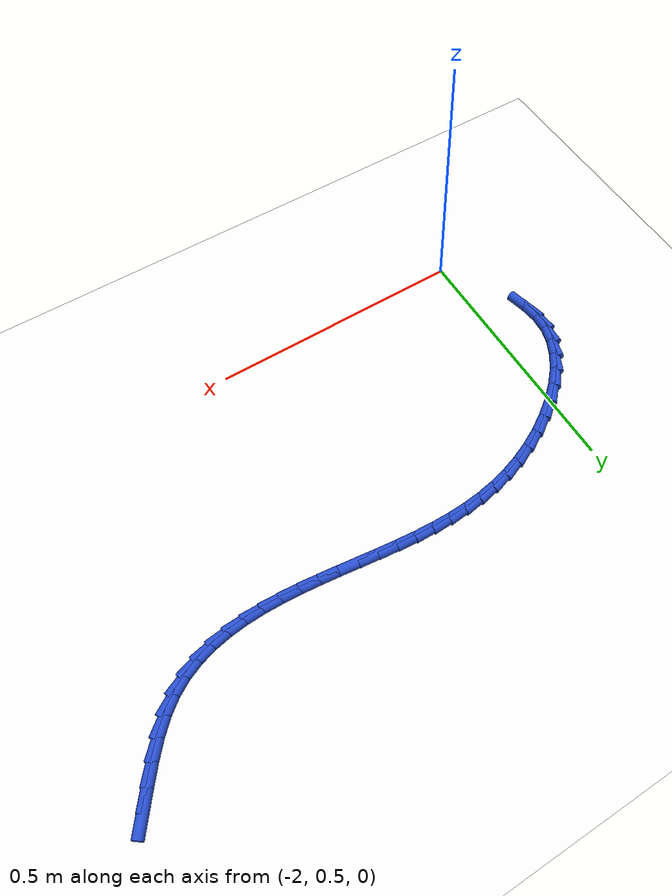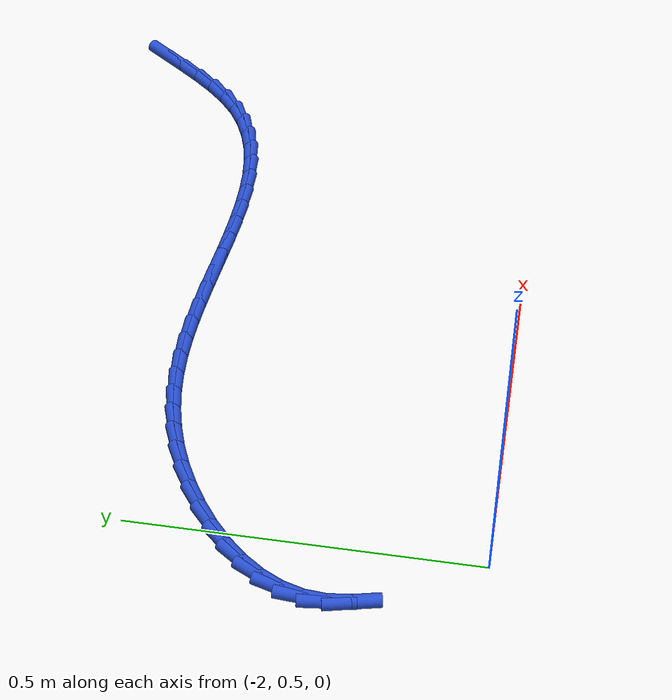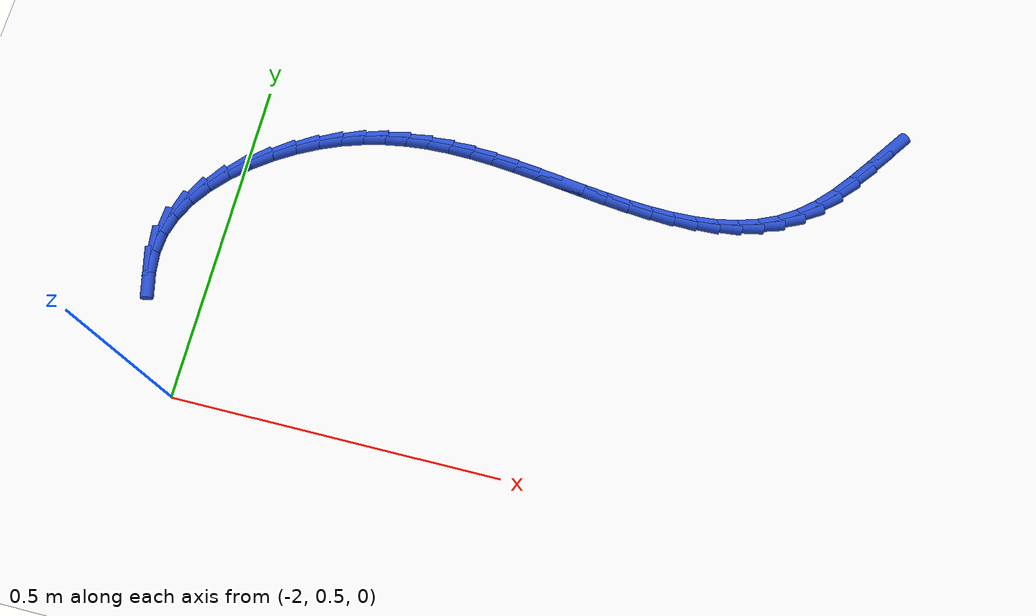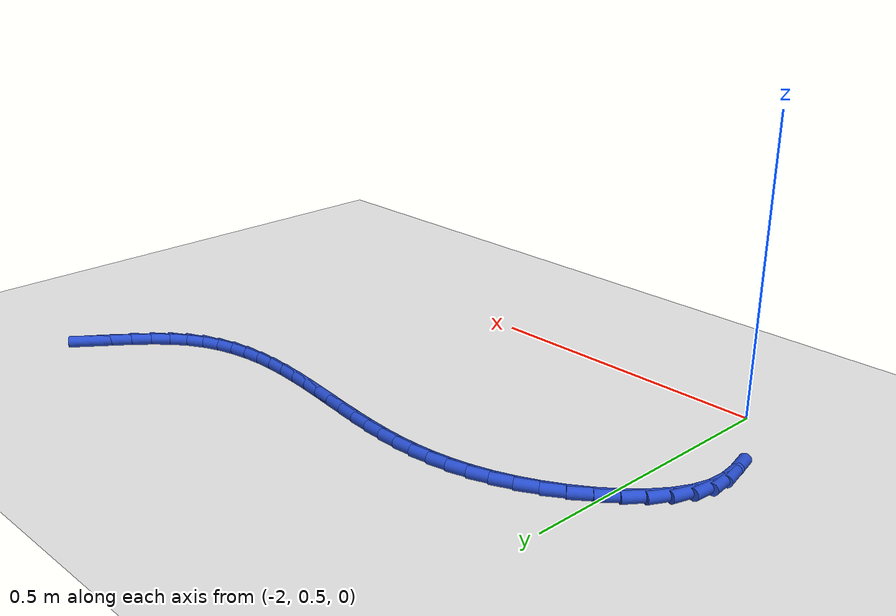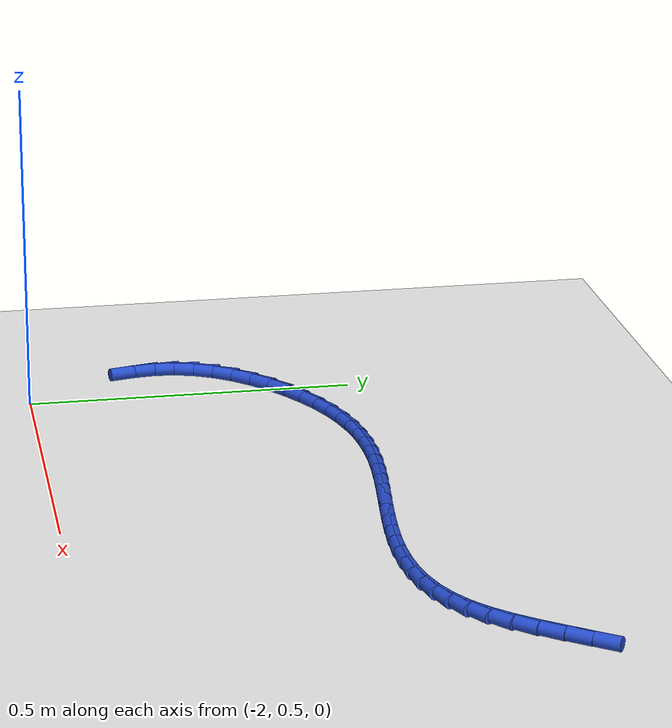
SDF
<sdf version="1.6">
 <world name="default">
  <model name="ground_plane">
   <static>1</static>
   <link name="link">
    <collision name="collision">
     <geometry><plane><normal>0 0 1</normal><size>100 100</size></plane></geometry>
     <surface><friction><ode><mu>100</mu><mu2>50</mu2></ode></friction></surface>
    </collision>
    <visual name="visual">
     <cast_shadows>0</cast_shadows>
     <geometry><plane><normal>0 0 1</normal><size>100 100</size></plane></geometry>
     <material>
      <script><uri>file://media/materials/scripts/gazebo.material</uri><name>Gazebo/WhiteGlow</name></script>
     </material>
    </visual>
   </link>
  </model>
  <model name="line">
   <link name="link_54">
    <pose>-1.0417423311238279 1.1291191869624517 0.01 0 1.57 0.9470828733167915</pose>
    <collision name="collision">
     <geometry><cylinder><radius>0.01</radius><length>0.08</length></cylinder></geometry>
    </collision>
    <visual name="visual">
     <material>
      <script><name>Gazebo/Blue</name><uri>file://media/materials/scripts/gazebo.material</uri></script>
     </material>
     <geometry><cylinder><radius>0.01</radius><length>0.08</length></cylinder></geometry>
    </visual>
   </link>
   <link name="link_55">
    <pose>-1.0631627246353132 1.0993492076046145 0.01 0 1.57 0.9313293873262152</pose>
    <collision name="collision">
     <geometry><cylinder><radius>0.01</radius><length>0.08</length></cylinder></geometry>
    </collision>
    <visual name="visual">
     <material>
      <script><name>Gazebo/Blue</name><uri>file://media/materials/scripts/gazebo.material</uri></script>
     </material>
     <geometry><cylinder><radius>0.01</radius><length>0.08</length></cylinder></geometry>
    </visual>
   </link>
   <link name="link_56">
    <pose>-1.0849441892836496 1.0700618497447834 0.01 0 1.57 0.8869006219384965</pose>
    <collision name="collision">
     <geometry><cylinder><radius>0.01</radius><length>0.08</length></cylinder></geometry>
    </collision>
    <visual name="visual">
     <material>
      <script><name>Gazebo/Blue</name><uri>file://media/materials/scripts/gazebo.material</uri></script>
     </material>
     <geometry><cylinder><radius>0.01</radius><length>0.08</length></cylinder></geometry>
    </visual>
   </link>
   <link name="link_57">
    <pose>-1.1075238045878433 1.0423610490824702 0.01 0 1.57 0.809877830168493</pose>
    <collision name="collision">
     <geometry><cylinder><radius>0.01</radius><length>0.08</length></cylinder></geometry>
    </collision>
    <visual name="visual">
     <material>
      <script><name>Gazebo/Blue</name><uri>file://media/materials/scripts/gazebo.material</uri></script>
     </material>
     <geometry><cylinder><radius>0.01</radius><length>0.08</length></cylinder></geometry>
    </visual>
   </link>
   <link name="link_58">
    <pose>-1.1313386500668998 1.017350741317187 0.01 0 1.57 0.6945707113592207</pose>
    <collision name="collision">
     <geometry><cylinder><radius>0.01</radius><length>0.08</length></cylinder></geometry>
    </collision>
    <visual name="visual">
     <material>
      <script><name>Gazebo/Blue</name><uri>file://media/materials/scripts/gazebo.material</uri></script>
     </material>
     <geometry><cylinder><radius>0.01</radius><length>0.08</length></cylinder></geometry>
    </visual>
   </link>
   <link name="link_59">
    <pose>-1.1568208809657459 0.9961227830435774 0.01 0 1.57 0.5546889701685163</pose>
    <collision name="collision">
     <geometry><cylinder><radius>0.01</radius><length>0.08</length></cylinder></geometry>
    </collision>
    <visual name="visual">
     <material>
      <script><name>Gazebo/Blue</name><uri>file://media/materials/scripts/gazebo.material</uri></script>
     </material>
     <geometry><cylinder><radius>0.01</radius><length>0.08</length></cylinder></geometry>
    </visual>
   </link>
   <link name="link_60">
    <pose>-1.1841633607919964 0.9791820550010722 0.01 0 1.57 0.4203542126535305</pose>
    <collision name="collision">
     <geometry><cylinder><radius>0.01</radius><length>0.08</length></cylinder></geometry>
    </collision>
    <visual name="visual">
     <material>
      <script><name>Gazebo/Blue</name><uri>file://media/materials/scripts/gazebo.material</uri></script>
     </material>
     <geometry><cylinder><radius>0.01</radius><length>0.08</length></cylinder></geometry>
    </visual>
   </link>
   <link name="link_61">
    <pose>-1.2132171776333305 0.9661950725026004 0.01 0 1.57 0.29905972575282286</pose>
    <collision name="collision">
     <geometry><cylinder><radius>0.01</radius><length>0.08</length></cylinder></geometry>
    </collision>
    <visual name="visual">
     <material>
      <script><name>Gazebo/Blue</name><uri>file://media/materials/scripts/gazebo.material</uri></script>
     </material>
     <geometry><cylinder><radius>0.01</radius><length>0.08</length></cylinder></geometry>
    </visual>
   </link>
   <link name="link_62">
    <pose>-1.2438071785914095 0.9567639824655036 0.01 0 1.57 0.1938673856405325</pose>
    <collision name="collision">
     <geometry><cylinder><radius>0.01</radius><length>0.08</length></cylinder></geometry>
    </collision>
    <visual name="visual">
     <material>
      <script><name>Gazebo/Blue</name><uri>file://media/materials/scripts/gazebo.material</uri></script>
     </material>
     <geometry><cylinder><radius>0.01</radius><length>0.08</length></cylinder></geometry>
    </visual>
   </link>
   <link name="link_63">
    <pose>-1.2757582107678975 0.9504909318071219 0.01 0 1.57 0.1056161498923905</pose>
    <collision name="collision">
     <geometry><cylinder><radius>0.01</radius><length>0.08</length></cylinder></geometry>
    </collision>
    <visual name="visual">
     <material>
      <script><name>Gazebo/Blue</name><uri>file://media/materials/scripts/gazebo.material</uri></script>
     </material>
     <geometry><cylinder><radius>0.01</radius><length>0.08</length></cylinder></geometry>
    </visual>
   </link>
   <link name="link_64">
    <pose>-1.3088951212644555 0.9469780674447966 0.01 0 1.57 0.03368010845284562</pose>
    <collision name="collision">
     <geometry><cylinder><radius>0.01</radius><length>0.08</length></cylinder></geometry>
    </collision>
    <visual name="visual">
     <material>
      <script><name>Gazebo/Blue</name><uri>file://media/materials/scripts/gazebo.material</uri></script>
     </material>
     <geometry><cylinder><radius>0.01</radius><length>0.08</length></cylinder></geometry>
    </visual>
   </link>
   <link name="link_65">
    <pose>-1.3430427571827463 0.945827536295868 0.01 0 1.57 -0.02326265055965935</pose>
    <collision name="collision">
     <geometry><cylinder><radius>0.01</radius><length>0.08</length></cylinder></geometry>
    </collision>
    <visual name="visual">
     <material>
      <script><name>Gazebo/Blue</name><uri>file://media/materials/scripts/gazebo.material</uri></script>
     </material>
     <geometry><cylinder><radius>0.01</radius><length>0.08</length></cylinder></geometry>
    </visual>
   </link>
   <link name="link_66">
    <pose>-1.3780259656244327 0.9466414852776776 0.01 0 1.57 -0.06668922177319665</pose>
    <collision name="collision">
     <geometry><cylinder><radius>0.01</radius><length>0.08</length></cylinder></geometry>
    </collision>
    <visual name="visual">
     <material>
      <script><name>Gazebo/Blue</name><uri>file://media/materials/scripts/gazebo.material</uri></script>
     </material>
     <geometry><cylinder><radius>0.01</radius><length>0.08</length></cylinder></geometry>
    </visual>
   </link>
   <link name="link_67">
    <pose>-1.4136695936911763 0.9490220613075656 0.01 0 1.57 -0.0979270749166852</pose>
    <collision name="collision">
     <geometry><cylinder><radius>0.01</radius><length>0.08</length></cylinder></geometry>
    </collision>
    <visual name="visual">
     <material>
      <script><name>Gazebo/Blue</name><uri>file://media/materials/scripts/gazebo.material</uri></script>
     </material>
     <geometry><cylinder><radius>0.01</radius><length>0.08</length></cylinder></geometry>
    </visual>
   </link>
   <link name="link_68">
    <pose>-1.4497984884846407 0.9525714113028732 0.01 0 1.57 -0.1180108050710672</pose>
    <collision name="collision">
     <geometry><cylinder><radius>0.01</radius><length>0.08</length></cylinder></geometry>
    </collision>
    <visual name="visual">
     <material>
      <script><name>Gazebo/Blue</name><uri>file://media/materials/scripts/gazebo.material</uri></script>
     </material>
     <geometry><cylinder><radius>0.01</radius><length>0.08</length></cylinder></geometry>
    </visual>
   </link>
   <link name="link_69">
    <pose>-1.4862374971064871 0.9568916821809412 0.01 0 1.57 -0.1276270603784995</pose>
    <collision name="collision">
     <geometry><cylinder><radius>0.01</radius><length>0.08</length></cylinder></geometry>
    </collision>
    <visual name="visual">
     <material>
      <script><name>Gazebo/Blue</name><uri>file://media/materials/scripts/gazebo.material</uri></script>
     </material>
     <geometry><cylinder><radius>0.01</radius><length>0.08</length></cylinder></geometry>
    </visual>
   </link>
   <link name="link_70">
    <pose>-1.522811466658379 0.9615850208591104 0.01 0 1.57 -0.12709848111222424</pose>
    <collision name="collision">
     <geometry><cylinder><radius>0.01</radius><length>0.08</length></cylinder></geometry>
    </collision>
    <visual name="visual">
     <material>
      <script><name>Gazebo/Blue</name><uri>file://media/materials/scripts/gazebo.material</uri></script>
     </material>
     <geometry><cylinder><radius>0.01</radius><length>0.08</length></cylinder></geometry>
    </visual>
   </link>
   <link name="link_71">
    <pose>-1.5593452442419777 0.9662535742547216 0.01 0 1.57 -0.1163797046956164</pose>
    <collision name="collision">
     <geometry><cylinder><radius>0.01</radius><length>0.08</length></cylinder></geometry>
    </collision>
    <visual name="visual">
     <material>
      <script><name>Gazebo/Blue</name><uri>file://media/materials/scripts/gazebo.material</uri></script>
     </material>
     <geometry><cylinder><radius>0.01</radius><length>0.08</length></cylinder></geometry>
    </visual>
   </link>
   <link name="link_72">
    <pose>-1.595663676958947 0.9704994892851156 0.01 0 1.57 -0.09505419089202705</pose>
    <collision name="collision">
     <geometry><cylinder><radius>0.01</radius><length>0.08</length></cylinder></geometry>
    </collision>
    <visual name="visual">
     <material>
      <script><name>Gazebo/Blue</name><uri>file://media/materials/scripts/gazebo.material</uri></script>
     </material>
     <geometry><cylinder><radius>0.01</radius><length>0.08</length></cylinder></geometry>
    </visual>
   </link>
   <link name="link_73">
    <pose>-1.6315916119109481 0.9739249128676335 0.01 0 1.57 -0.062332516761438174</pose>
    <collision name="collision">
     <geometry><cylinder><radius>0.01</radius><length>0.08</length></cylinder></geometry>
    </collision>
    <visual name="visual">
     <material>
      <script><name>Gazebo/Blue</name><uri>file://media/materials/scripts/gazebo.material</uri></script>
     </material>
     <geometry><cylinder><radius>0.01</radius><length>0.08</length></cylinder></geometry>
    </visual>
   </link>
   <link name="link_74">
    <pose>-1.6669538966825557 0.9761319922364173 0.01 0 1.57 -0.017990658891426033</pose>
    <collision name="collision">
     <geometry><cylinder><radius>0.01</radius><length>0.08</length></cylinder></geometry>
    </collision>
    <visual name="visual">
     <material>
      <script><name>Gazebo/Blue</name><uri>file://media/materials/scripts/gazebo.material</uri></script>
     </material>
     <geometry><cylinder><radius>0.01</radius><length>0.08</length></cylinder></geometry>
    </visual>
   </link>
   <link name="link_75">
    <pose>-1.7016256084986192 0.9767558264825233 0.01 0 1.57 0.03525739152219126</pose>
    <collision name="collision">
     <geometry><cylinder><radius>0.01</radius><length>0.08</length></cylinder></geometry>
    </collision>
    <visual name="visual">
     <material>
      <script><name>Gazebo/Blue</name><uri>file://media/materials/scripts/gazebo.material</uri></script>
     </material>
     <geometry><cylinder><radius>0.01</radius><length>0.08</length></cylinder></geometry>
    </visual>
   </link>
   <link name="link_76">
    <pose>-1.7356700724963374 0.9755550098731188 0.01 0 1.57 0.09628548511236039</pose>
    <collision name="collision">
     <geometry><cylinder><radius>0.01</radius><length>0.08</length></cylinder></geometry>
    </collision>
    <visual name="visual">
     <material>
      <script><name>Gazebo/Blue</name><uri>file://media/materials/scripts/gazebo.material</uri></script>
     </material>
     <geometry><cylinder><radius>0.01</radius><length>0.08</length></cylinder></geometry>
    </visual>
   </link>
   <link name="link_77">
    <pose>-1.7691947055260897 0.9723170619038982 0.01 0 1.57 0.16423341947658976</pose>
    <collision name="collision">
     <geometry><cylinder><radius>0.01</radius><length>0.08</length></cylinder></geometry>
    </collision>
    <visual name="visual">
     <material>
      <script><name>Gazebo/Blue</name><uri>file://media/materials/scripts/gazebo.material</uri></script>
     </material>
     <geometry><cylinder><radius>0.01</radius><length>0.08</length></cylinder></geometry>
    </visual>
   </link>
   <link name="link_78">
    <pose>-1.8023069244382541 0.9668295020705554 0.01 0 1.57 0.23773189081102367</pose>
    <collision name="collision">
     <geometry><cylinder><radius>0.01</radius><length>0.08</length></cylinder></geometry>
    </collision>
    <visual name="visual">
     <material>
      <script><name>Gazebo/Blue</name><uri>file://media/materials/scripts/gazebo.material</uri></script>
     </material>
     <geometry><cylinder><radius>0.01</radius><length>0.08</length></cylinder></geometry>
    </visual>
   </link>
   <link name="link_79">
    <pose>-1.8351141460832086 0.9588798498687842 0.01 0 1.57 0.3149554113314245</pose>
    <collision name="collision">
     <geometry><cylinder><radius>0.01</radius><length>0.08</length></cylinder></geometry>
    </collision>
    <visual name="visual">
     <material>
      <script><name>Gazebo/Blue</name><uri>file://media/materials/scripts/gazebo.material</uri></script>
     </material>
     <geometry><cylinder><radius>0.01</radius><length>0.08</length></cylinder></geometry>
    </visual>
   </link>
   <link name="link_80">
    <pose>-1.8677237873113326 0.9482556247942784 0.01 0 1.57 0.3937818215334405</pose>
    <collision name="collision">
     <geometry><cylinder><radius>0.01</radius><length>0.08</length></cylinder></geometry>
    </collision>
    <visual name="visual">
     <material>
      <script><name>Gazebo/Blue</name><uri>file://media/materials/scripts/gazebo.material</uri></script>
     </material>
     <geometry><cylinder><radius>0.01</radius><length>0.08</length></cylinder></geometry>
    </visual>
   </link>
   <link name="link_81">
    <pose>-1.900243264973004 0.9347443463427324 0.01 0 1.57 0.47206296331955294</pose>
    <collision name="collision">
     <geometry><cylinder><radius>0.01</radius><length>0.08</length></cylinder></geometry>
    </collision>
    <visual name="visual">
     <material>
      <script><name>Gazebo/Blue</name><uri>file://media/materials/scripts/gazebo.material</uri></script>
     </material>
     <geometry><cylinder><radius>0.01</radius><length>0.08</length></cylinder></geometry>
    </visual>
   </link>
   <link name="link_82">
    <pose>-1.9326781822910863 0.9181842487292804 0.01 0 1.57 0.5501377935742998</pose>
    <collision name="collision">
     <geometry><cylinder><radius>0.01</radius><length>0.08</length></cylinder></geometry>
    </collision>
    <visual name="visual">
     <material>
      <script><name>Gazebo/Blue</name><uri>file://media/materials/scripts/gazebo.material</uri></script>
     </material>
     <geometry><cylinder><radius>0.01</radius><length>0.08</length></cylinder></geometry>
    </visual>
   </link>
   <link name="link_83">
    <pose>-1.9643998377487555 0.8987295217802873 0.01 0 1.57 0.6321894082180952</pose>
    <collision name="collision">
     <geometry><cylinder><radius>0.01</radius><length>0.08</length></cylinder></geometry>
    </collision>
    <visual name="visual">
     <material>
      <script><name>Gazebo/Blue</name><uri>file://media/materials/scripts/gazebo.material</uri></script>
     </material>
     <geometry><cylinder><radius>0.01</radius><length>0.08</length></cylinder></geometry>
    </visual>
   </link>
   <link name="link_84">
    <pose>-1.9945356732817079 0.876655823505612 0.01 0 1.57 0.7228964734891816</pose>
    <collision name="collision">
     <geometry><cylinder><radius>0.01</radius><length>0.08</length></cylinder></geometry>
    </collision>
    <visual name="visual">
     <material>
      <script><name>Gazebo/Blue</name><uri>file://media/materials/scripts/gazebo.material</uri></script>
     </material>
     <geometry><cylinder><radius>0.01</radius><length>0.08</length></cylinder></geometry>
    </visual>
   </link>
   <link name="link_85">
    <pose>-2.0222126232435707 0.8522390647484794 0.01 0 1.57 0.8274539265994267</pose>
    <collision name="collision">
     <geometry><cylinder><radius>0.01</radius><length>0.08</length></cylinder></geometry>
    </collision>
    <visual name="visual">
     <material>
      <script><name>Gazebo/Blue</name><uri>file://media/materials/scripts/gazebo.material</uri></script>
     </material>
     <geometry><cylinder><radius>0.01</radius><length>0.08</length></cylinder></geometry>
    </visual>
   </link>
   <link name="link_86">
    <pose>-2.0465576219879704 0.8257551563521163 0.01 0 1.57 0.9518724542747022</pose>
    <collision name="collision">
     <geometry><cylinder><radius>0.01</radius><length>0.08</length></cylinder></geometry>
    </collision>
    <visual name="visual">
     <material>
      <script><name>Gazebo/Blue</name><uri>file://media/materials/scripts/gazebo.material</uri></script>
     </material>
     <geometry><cylinder><radius>0.01</radius><length>0.08</length></cylinder></geometry>
    </visual>
   </link>
   <link name="link_87">
    <pose>-2.066697603868534 0.7974800091597478 0.01 0 1.57 1.1026831677587619</pose>
    <collision name="collision">
     <geometry><cylinder><radius>0.01</radius><length>0.08</length></cylinder></geometry>
    </collision>
    <visual name="visual">
     <material>
      <script><name>Gazebo/Blue</name><uri>file://media/materials/scripts/gazebo.material</uri></script>
     </material>
     <geometry><cylinder><radius>0.01</radius><length>0.08</length></cylinder></geometry>
    </visual>
   </link>
   <link name="link_88">
    <pose>-2.0817595032388874 0.7676895340146 0.01 0 1.57 1.285210263440374</pose>
    <collision name="collision">
     <geometry><cylinder><radius>0.01</radius><length>0.08</length></cylinder></geometry>
    </collision>
    <visual name="visual">
     <material>
      <script><name>Gazebo/Blue</name><uri>file://media/materials/scripts/gazebo.material</uri></script>
     </material>
     <geometry><cylinder><radius>0.01</radius><length>0.08</length></cylinder></geometry>
    </visual>
   </link>
   <link name="link_89">
    <pose>-2.090870254452658 0.7366596417598984 0.01 0 1.57 1.4976940230537592</pose>
    <collision name="collision">
     <geometry><cylinder><radius>0.01</radius><length>0.08</length></cylinder></geometry>
    </collision>
    <visual name="visual">
     <material>
      <script><name>Gazebo/Blue</name><uri>file://media/materials/scripts/gazebo.material</uri></script>
     </material>
     <geometry><cylinder><radius>0.01</radius><length>0.08</length></cylinder></geometry>
    </visual>
   </link>
   <link name="link_90">
    <pose>-2.0932133261800767 0.7046648020656374 0.01 0 1.57 -1.4557817368991162</pose>
    <collision name="collision">
     <geometry><cylinder><radius>0.01</radius><length>0.08</length></cylinder></geometry>
    </collision>
    <visual name="visual">
     <material>
      <script><name>Gazebo/Blue</name><uri>file://media/materials/scripts/gazebo.material</uri></script>
     </material>
     <geometry><cylinder><radius>0.01</radius><length>0.08</length></cylinder></geometry>
    </visual>
   </link>
   <link name="link_91">
    <pose>-2.089433070981387 0.6719422437384956 0.01 0 1.57 -1.3431574219906954</pose>
    <collision name="collision">
     <geometry><cylinder><radius>0.01</radius><length>0.08</length></cylinder></geometry>
    </collision>
    <visual name="visual">
     <material>
      <script><name>Gazebo/Blue</name><uri>file://media/materials/scripts/gazebo.material</uri></script>
     </material>
     <geometry><cylinder><radius>0.01</radius><length>0.08</length></cylinder></geometry>
    </visual>
   </link>
  </model>
 </world>
</sdf>
